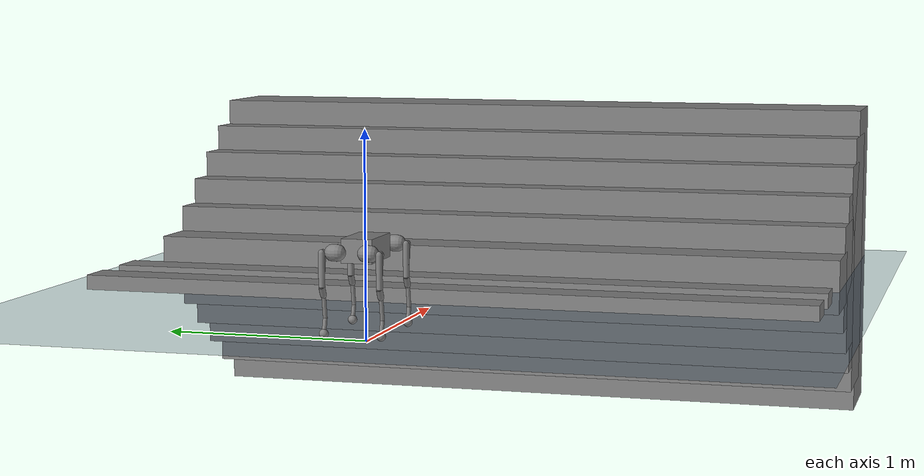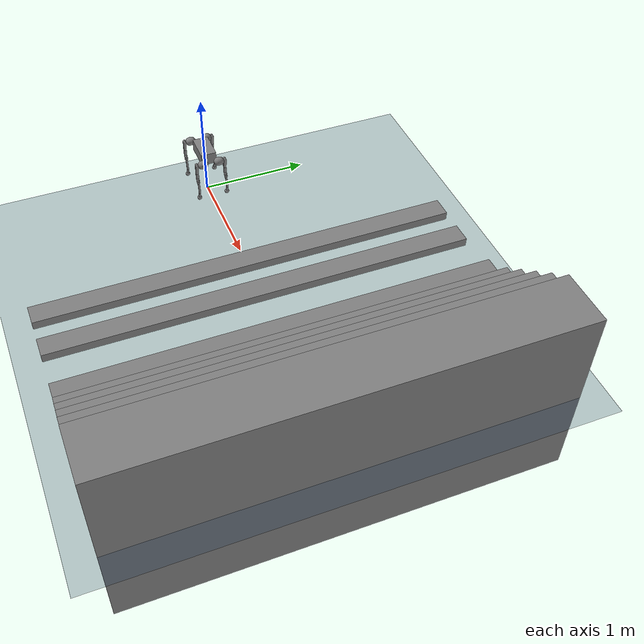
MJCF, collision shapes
<mujoco model="dog scene">
  <include file="dog.xml"/>

  <statistic center="0 0 0.1" extent="0.8"/>

  <visual>
    <headlight diffuse="0.6 0.6 0.6" ambient="0.3 0.3 0.3" specular="0 0 0"/>
    <rgba haze="0.15 0.25 0.35 1"/>
  </visual>

  <asset>
    <texture type="skybox" builtin="gradient" rgb1="0.3 0.5 0.7" rgb2="0 0 0" width="512" height="3072"/>
    <texture type="2d" name="groundplane" builtin="checker" mark="edge" rgb1="0.2 0.3 0.4" rgb2="0.1 0.2 0.3"
      markrgb="0.8 0.8 0.8" width="300" height="300"/>
    <material name="groundplane" texture="groundplane" texuniform="true" texrepeat="5 5" reflectance="0.2"/>
  </asset>

  <worldbody>
    <light pos="0 0 1.5" dir="0 0 -1" directional="true"/>
    <geom name="floor" size="0 0 0.05" type="plane" material="groundplane" friction="1.0 1.0 0.01"/> <!-- 添加地面摩擦系数与Isaac Gym对齐 -->

    <geom pos="1.2 0 0.04" type="box"  size="0.1 2 0.04" quat="1.0 0 0 0"/>
    <geom pos="1.6 0 0.04" type="box"  size="0.1 2 0.04" quat="1.0 0 0 0"/>

    <geom pos="2.3 0 0.02" type="box"  size="0.2 2 0.15" quat="1.0 0 0 0"/>
    <geom pos="2.6 0 0.02" type="box"  size="0.22 2 0.3" quat="1.0 0 0 0"/>
    <geom pos="2.8 0 0.02" type="box"  size="0.23 2 0.45" quat="1.0 0 0 0"/>
    <geom pos="3 0 0.02" type="box"  size="0.24 2 0.6" quat="1.0 0 0 0"/>
    <geom pos="3.2 0 0.02" type="box"  size="0.25 2 0.75" quat="1.0 0 0 0"/>
    <geom pos="3.4 0 0.02" type="box"  size="0.26 2 0.9" quat="1.0 0 0 0"/>
  </worldbody>
</mujoco>

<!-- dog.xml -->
<mujoco model="TOE_dog">
  <compiler angle="radian" meshdir="assets" autolimits="true"/>
  <option cone="elliptic" impratio="100" />

  <!-- =========== 重构的默认类 =========== -->
  <default>
    <default class="toe_dog">
      <!-- 视觉几何体（不参与碰撞） -->
      <default class="visual">
        <geom type="mesh" contype="0" conaffinity="0" group="2" material="gray"/>
      </default>
      <!-- 碰撞几何体基类 -->
      <default class="collision">
        <geom group="3" type="capsule" contype="1" conaffinity="1"/>
        <!-- 大腿段（三截） -->
        <default class="thigh1">
          <geom size="0.015" fromto="-0.02 0 0 -0.02 0 -0.16"/>
        </default>
        <default class="thigh2">
          <geom size="0.015" fromto="0 0 0 -0.02 0 -0.1"/>
        </default>
        <default class="thigh3">
          <geom size="0.015" fromto="-0.02 0 -0.16 0 0 -0.2"/>
        </default>
        <!-- 小腿段（两截） -->
        <default class="calf1">
          <geom size="0.01" fromto="0 0 0 0.02 0 -0.13"/>
        </default>
        <default class="calf2">
          <geom size="0.01" fromto="0.02 0 -0.13 0 0 -0.2"/>
        </default>
        <!-- 足端球体 -->
        <default class="foot">
          <!-- 尺寸和位置沿用你原来的参数，但优先使用 foot 类的定义 -->
          <geom type="sphere" size="0.022" pos="0 0 -0.2005" priority="1"
                condim="6" friction="1.2 0.02 0.01"/>
        </default>
      </default>
      <!-- 关节通用参数 -->
      <joint axis="0 1 0" damping="0.1" armature="0.005" frictionloss="0.05"/>
    </default>
  </default>

  <!-- =========== 资源 =========== -->
  <asset>
    <material name="metal" rgba=".9 .95 .95 1" />
    <material name="black" rgba="0 0 0 1" />
    <material name="white" rgba="1 1 1 1" />
    <material name="gray" rgba="0.67 0.69 0.77 1" />

    <mesh name="TOE_base" file="TOE_base.STL"/>
    <mesh name="TOE_FL_hip" file="TOE_FL_hip.STL"/>
    <mesh name="TOE_L_thigh" file="TOE_L_thigh.STL"/>
    <mesh name="TOE_calf" file="TOE_calf.STL"/>
    <mesh name="TOE_foot" file="TOE_foot.STL"/>
    <mesh name="foot" file="foot.obj"/>  <!-- 原 foot.obj 未命名，现在补上 name -->
    <mesh name="TOE_FR_hip" file="TOE_FR_hip.STL"/>
    <mesh name="TOE_R_thigh" file="TOE_R_thigh.STL"/>
    <mesh name="TOE_RL_hip" file="TOE_RL_hip.STL"/>
    <mesh name="TOE_RR_hip" file="TOE_RR_hip.STL"/>
  </asset>

  <!-- =========== 运动学树 =========== -->
  <worldbody>
    <body name="base_link" pos="0 0 0.445" childclass="toe_dog">
      <inertial pos="0 0 0" quat="-0.000543471 0.713435 -0.00173769 0.700719"
        mass="5.1234705"
        diaginertia="0.0656641 0.0578995 0.0175231" />
      <freejoint />
      <site name="imu" size="0.01" pos="0 0 0"/>

      <!-- 躯干视觉 -->
      <geom class="visual" mesh="TOE_base"/>
      <!-- 躯干碰撞（用 box 近似） -->
      <geom name="trunk_collision" type="box" size="0.135 0.075 0.057" pos="0 0 0"
            group="3" contype="1" conaffinity="1"/>

      <!-- ===== 左前腿 FL ===== -->
      <body name="FL_hip" pos="0.2 0.05 0">
        <inertial pos="0 0 0" quat="0.485437 0.52726 0.503798 0.48222" mass="0.669901" diaginertia="0.000851635 0.000609749 0.000545446"/>
        <joint name="FL_hip_joint" axis="1 0 0" range="-1 1"/>
        <!-- 视觉 -->
        <geom class="visual" mesh="TOE_FL_hip"/>
        <!-- 髋部碰撞（胶囊体，参数来自你原来的 cylinder） -->
        <geom name="FL_hip_collision" class="collision" type="capsule" fromto="0 0.02 0 0 0.04 0" size="0.04"/>

        <body name="FL_thigh" pos="0 0.08953 0">
          <inertial pos="0 -0.0225193 -0.0253115" quat="0.980354 0.13425 0.0229827 -0.142673" mass="1.05419" diaginertia="0.00435723 0.00426548 0.00116428"/>
          <joint name="FL_thigh_joint" axis="0 1 0" range="-1.5 2.5"/>
          <!-- 视觉 -->
          <geom class="visual" mesh="TOE_L_thigh"/>
          <!-- 大腿碰撞体 -->
          <geom name="FL_thigh_collision1" class="thigh1"/>
          <geom name="FL_thigh_collision2" class="thigh2"/>
          <geom name="FL_thigh_collision3" class="thigh3"/>

          <body name="FL_calf" pos="0 0 -0.18">
            <inertial pos="2.20012e-06 0 -0.0899722" quat="0.768153 0.0269288 0.0143643 0.639538" mass="0.22" diaginertia="0.00164183 0.00163561 5.05888e-05"/>
            <joint name="FL_calf_joint" axis="0 1 0" range="-2.6 -0.15"/>
            <!-- 视觉 -->
            <geom class="visual" mesh="TOE_calf"/>
            <!-- 小腿碰撞体 -->
            <geom name="FL_calf_collision1" class="calf1"/>
            <geom name="FL_calf_collision2" class="calf2"/>
            <!-- 足端碰撞 -->
            <geom name="FL_foot_collision" class="foot"/>
            <!-- 足端视觉（可选） -->
            <geom class="visual" mesh="foot" material="black"/>
            <!-- 足端 site（用于观测） -->
            <site name="FL" pos="0 0 -0.2005" type="sphere" size="0.022" group="5"/>
          </body>
        </body>
      </body>

      <!-- ===== 右前腿 FR ===== -->
      <body name="FR_hip" pos="0.2 -0.05 0">
        <inertial pos="0 0 0" quat="0.503798 0.48222 0.485437 0.52726" mass="0.669901" diaginertia="0.000851635 0.000609749 0.000545446"/>
        <joint name="FR_hip_joint" axis="1 0 0" range="-1 1"/>
        <geom class="visual" mesh="TOE_FR_hip"/>
        <geom name="FR_hip_collision" class="collision" type="capsule" fromto="0 -0.02 0 0 -0.04 0" size="0.04"/>

        <body name="FR_thigh" pos="0 -0.08953 0">
          <inertial pos="0 0.022389 -0.026316" quat="0.988507 -0.136232 -0.00402235 -0.0654148" mass="1.05822" diaginertia="0.00435124 0.00427162 0.00116411"/>
          <joint name="FR_thigh_joint" axis="0 1 0" range="-1.5 2.5"/>
          <geom class="visual" mesh="TOE_R_thigh"/>
          <geom name="FR_thigh_collision1" class="thigh1"/>
          <geom name="FR_thigh_collision2" class="thigh2"/>
          <geom name="FR_thigh_collision3" class="thigh3"/>

          <body name="FR_calf" pos="0 0 -0.18">
            <inertial pos="2.20013e-06 0 -0.0899722" quat="0.784656 0.0173719 -0.000694465 0.619687" mass="0.22" diaginertia="0.00225074 0.0022481 4.70681e-05"/>
            <joint name="FR_calf_joint" axis="0 1 0" range="-2.6 -0.15"/>
            <geom class="visual" mesh="TOE_calf"/>
            <geom name="FR_calf_collision1" class="calf1"/>
            <geom name="FR_calf_collision2" class="calf2"/>
            <geom name="FR_foot_collision" class="foot"/>
            <geom class="visual" mesh="foot" material="black"/>
            <site name="FR" pos="0 0 -0.2005" type="sphere" size="0.022" group="5"/>
          </body>
        </body>
      </body>

      <!-- ===== 左后腿 RL ===== -->
      <body name="RL_hip" pos="-0.2 0.05 0">
        <inertial pos="0 0 0" quat="0.460656 0.523594 0.50641 0.507144" mass="0.669901" diaginertia="0.00085164 0.000609744 0.000545446"/>
        <joint name="RL_hip_joint" axis="1 0 0" range="-1 1"/>
        <geom class="visual" mesh="TOE_RL_hip"/>
        <geom name="RL_hip_collision" class="collision" type="capsule" fromto="0 0.02 0 0 0.04 0" size="0.04"/>

        <body name="RL_thigh" pos="0 0.08953 0">
          <inertial pos="0 -0.0225193 -0.0253115" quat="0.989072 0.134036 0.028844 -0.0542121" mass="1.05419" diaginertia="0.00435414 0.00427351 0.00116666"/>
          <joint name="RL_thigh_joint" axis="0 1 0" range="-1.5 2.5"/>
          <geom class="visual" mesh="TOE_L_thigh"/>
          <geom name="RL_thigh_collision1" class="thigh1"/>
          <geom name="RL_thigh_collision2" class="thigh2"/>
          <geom name="RL_thigh_collision3" class="thigh3"/>

          <body name="RL_calf" pos="0 0 -0.18">
            <inertial pos="2.20012e-06 0 -0.0899722" quat="0.589757 0.00217462 -0.0158376 0.807423" mass="0.22" diaginertia="0.00224982 0.0022483 4.68694e-05"/>
            <joint name="RL_calf_joint" axis="0 1 0" range="-2.6 -0.15"/>
            <geom class="visual" mesh="TOE_calf"/>
            <geom name="RL_calf_collision1" class="calf1"/>
            <geom name="RL_calf_collision2" class="calf2"/>
            <geom name="RL_foot_collision" class="foot"/>
            <geom class="visual" mesh="foot" material="black"/>
            <site name="RL" pos="0 0 -0.2005" type="sphere" size="0.022" group="5"/>
          </body>
        </body>
      </body>

      <!-- ===== 右后腿 RR ===== -->
      <body name="RR_hip" pos="-0.2 -0.05 0">
        <inertial pos="0 0 0" quat="0.50641 0.507144 0.460656 0.523594" mass="0.669901" diaginertia="0.00085164 0.000609744 0.000545446"/>
        <joint name="RR_hip_joint" axis="1 0 0" range="-1 1"/>
        <geom class="visual" mesh="TOE_RR_hip"/>
        <geom name="RR_hip_collision" class="collision" type="capsule" fromto="0 -0.02 0 0 -0.04 0" size="0.04"/>

        <body name="RR_thigh" pos="0 -0.08953 0">
          <inertial pos="0 0.0223887 -0.0263162" quat="0.98398 -0.0928968 0.0223897 0.150504" mass="1.05822" diaginertia="0.0044277 0.00434271 0.00116706"/>
          <joint name="RR_thigh_joint" axis="0 1 0" range="-1.5 2.5"/>
          <geom class="visual" mesh="TOE_R_thigh"/>
          <geom name="RR_thigh_collision1" class="thigh1"/>
          <geom name="RR_thigh_collision2" class="thigh2"/>
          <geom name="RR_thigh_collision3" class="thigh3"/>

          <body name="RR_calf" pos="0 0 -0.18">
            <inertial pos="2.20012e-06 0 -0.0899722" quat="0.633334 0.00270795 -0.015959 0.773709" mass="0.22" diaginertia="0.00225069 0.00224833 4.69019e-05"/>
            <joint name="RR_calf_joint" axis="0 1 0" range="-2.6 -0.15"/>
            <geom class="visual" mesh="TOE_calf"/>
            <geom name="RR_calf_collision1" class="calf1"/>
            <geom name="RR_calf_collision2" class="calf2"/>
            <geom name="RR_foot_collision" class="foot"/>
            <geom class="visual" mesh="foot" material="black"/>
            <site name="RR" pos="0 0 -0.2005" type="sphere" size="0.022" group="5"/>
          </body>
        </body>
      </body>
    </body>
  </worldbody>

  <!-- 执行器：由 Python 代码动态添加，XML 中不再定义 -->
  <actuator/>

  <!-- 传感器：只保留必要的 IMU -->
  <sensor>
    <gyro name="imu_ang_vel" site="imu"/>
    <velocimeter name="imu_lin_vel" site="imu"/>
    <accelerometer name="imu_lin_acc" site="imu"/>
  </sensor>
</mujoco>
